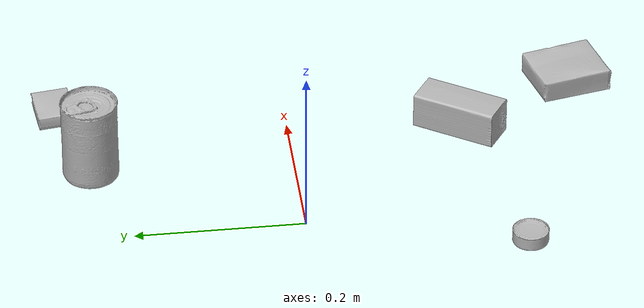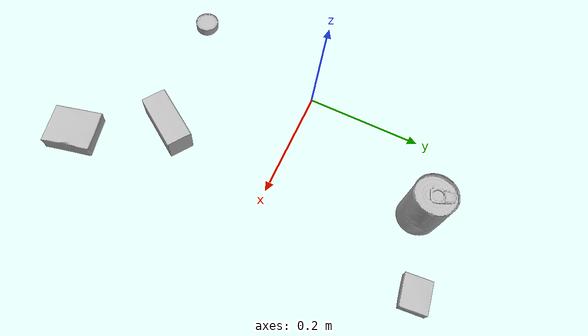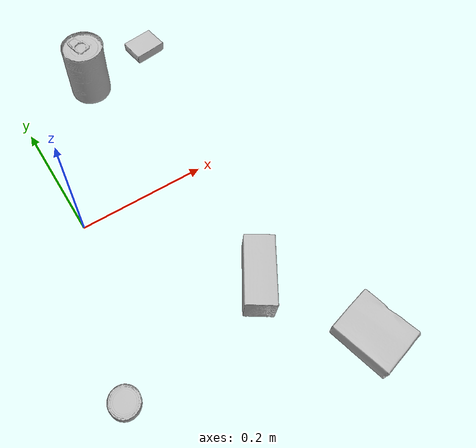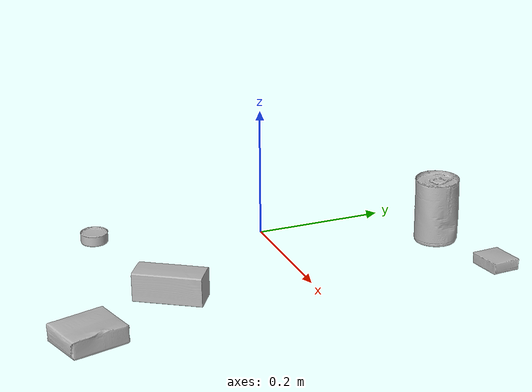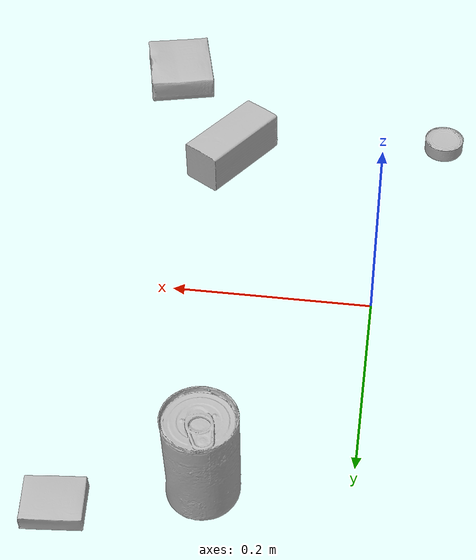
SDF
<sdf version="1.4">
  <world name="default">
    <light name="light1" type="point">
      <pose>0 0 1 0 0 0</pose>
      <diffuse>3 3 3 1</diffuse>
      <specular>3 3 3 1</specular>
    </light>
    <light name="light2" type="point">
      <pose>0 0.5 2 0 0 0</pose>
      <diffuse>1 1 1 1</diffuse>
      <specular>1 1 1 1</specular>
    </light>
    <light name="light3" type="point">
      <pose>0 0.5 2 0 0 0</pose>
      <diffuse>3 3 3 1</diffuse>
      <specular>3 3 3 1</specular>
    </light>
    <scene>
      <ambient>0.7 0.7 0.7</ambient>
    </scene>
    <model name="box1">
      <link name="link_box1">
        <collision name="default">
          <geometry>
            <mesh>
              <uri>model://pudding_box/collision_meshes/collision.obj</uri>
              <scale>0.5 0.5 0.5</scale>
            </mesh>
          </geometry>
          <surface>
            <friction>
              <ode>
                <mu>0.5</mu>
                <mu2>0.5</mu2>
              </ode>
            </friction>
          <contact>
        <ode>
            <max_vel>0</max_vel>
            <min_depth>0.0001</min_depth>
            <kp>1e8</kp>
        </ode>
    </contact></surface>
        </collision>
        <visual name="default">
          <geometry>
            <mesh>
              <uri>model://pudding_box/visual_meshes/visual.dae</uri>
              <scale>0.5 0.5 0.5</scale>
            </mesh>
          </geometry>
        </visual>
        <inertial>
          <mass>0.049221161752939224</mass>
          <pose>0.00024474109522998333 0.00040339428232982755 -0.0002594413817860186 0.005213101772454675 -0.006603800120423707 0.020079827019105066</pose>
          <inertia>
            <ixx>1.3910499e-05</ixx>
            <iyy>9.3590825e-06</iyy>
            <izz>2.0542482e-05</izz>
            <ixy>0</ixy>
            <ixz>0</ixz>
            <iyz>0</iyz>
          </inertia>
        </inertial>
      </link>
      <pose>0.25438162684440613 0.2751753330230713 0.009862907230854034 0.022348510913994306 -0.011391743353383336 -1.458398675430571</pose>
    </model>
    <model name="box2">
      <link name="link_box2">
        <collision name="default">
          <geometry>
            <mesh>
              <uri>model://gelatin_box/collision_meshes/collision.obj</uri>
              <scale>1.0 1.0 1.0</scale>
            </mesh>
          </geometry>
          <surface>
            <friction>
              <ode>
                <mu>0.5</mu>
                <mu2>0.5</mu2>
              </ode>
            </friction>
          <contact>
        <ode>
            <max_vel>0</max_vel>
            <min_depth>0.0001</min_depth>
            <kp>1e8</kp>
        </ode>
    </contact></surface>
        </collision>
        <visual name="default">
          <geometry>
            <mesh>
              <uri>model://gelatin_box/visual_meshes/visual.dae</uri>
              <scale>1.0 1.0 1.0</scale>
            </mesh>
          </geometry>
        </visual>
        <inertial>
          <mass>0.1975366622209549</mass>
          <pose>0.000431961816502735 0.00011156871187267825 -0.00036403207923285663 -0.0010503719683328595 -0.0047558182256164224 0.016440557608480007</pose>
          <inertia>
            <ixx>0.00013944478</ixx>
            <iyy>9.960467e-05</iyy>
            <izz>0.00021226601</izz>
            <ixy>0</ixy>
            <ixz>0</ixz>
            <iyz>0</iyz>
          </inertia>
        </inertial>
      </link>
      <pose>0.25236818194389343 -0.34799858927726746 0.015168314799666405 0.005597464944245792 -0.007304568055006338 0.23227574892242722</pose>
    </model>
    <model name="box3">
      <link name="link_box3">
        <collision name="default">
          <geometry>
            <mesh>
              <uri>model://wood_block/collision_meshes/collision.obj</uri>
              <scale>0.5 0.5 0.5</scale>
            </mesh>
          </geometry>
          <surface>
            <friction>
              <ode>
                <mu>0.5</mu>
                <mu2>0.5</mu2>
              </ode>
            </friction>
          <contact>
        <ode>
            <max_vel>0</max_vel>
            <min_depth>0.0001</min_depth>
            <kp>1e8</kp>
        </ode>
    </contact></surface>
        </collision>
        <visual name="default">
          <geometry>
            <mesh>
              <uri>model://wood_block/visual_meshes/visual.dae</uri>
              <scale>0.5 0.5 0.5</scale>
            </mesh>
          </geometry>
        </visual>
        <inertial>
          <mass>0.2799808979034424</mass>
          <pose>-2.9066577553749084e-06 -0.000285404734313488 0.00013204291462898254 -0.05220811074253327 -0.005192695744074178 -0.0068613776969266935</pose>
          <inertia>
            <ixx>9.3664195e-05</ixx>
            <iyy>0.0002958853</iyy>
            <izz>0.00029477844</izz>
            <ixy>0</ixy>
            <ixz>0</ixz>
            <iyz>0</iyz>
          </inertia>
        </inertial>
      </link>
      <pose>0.1692604124546051 -0.20484530925750732 0.022629255428910255 -0.0052084758475420745 0.005718699857140591 -2.1540705567227225</pose>
    </model>
    <model name="can1">
      <link name="link_can1">
        <collision name="default">
          <geometry>
            <mesh>
              <uri>model://tomato_soup_can/collision_meshes/collision.obj</uri>
              <scale>1.0 1.0 1.0</scale>
            </mesh>
          </geometry>
          <surface>
            <friction>
              <ode>
                <mu>0.5</mu>
                <mu2>0.5</mu2>
              </ode>
            </friction>
          <contact>
        <ode>
            <max_vel>0</max_vel>
            <min_depth>0.0001</min_depth>
            <kp>1e8</kp>
        </ode>
    </contact></surface>
        </collision>
        <visual name="default">
          <geometry>
            <mesh>
              <uri>model://tomato_soup_can/visual_meshes/visual.dae</uri>
              <scale>1.0 1.0 1.0</scale>
            </mesh>
          </geometry>
        </visual>
        <inertial>
          <mass>0.35683923959732056</mass>
          <pose>0.00012652271834667772 0.00010805513738887385 -0.0017973982030525804 0.007020067402313596 0.00042299257688944205 -0.009903281374499336</pose>
          <inertia>
            <ixx>0.0003912439</ixx>
            <iyy>0.00038898273</iyy>
            <izz>0.00020277809</izz>
            <ixy>0</ixy>
            <ixz>0</ixz>
            <iyz>0</iyz>
          </inertia>
        </inertial>
      </link>
      <pose>0.13034337759017944 0.23966149985790253 0.05127401649951935 -2.2275593368537666e-07 -3.711391047023509e-07 -3.1122929326752025</pose>
    </model>
    <model name="can2">
      <link name="link_can2">
        <collision name="default">
          <geometry>
            <mesh>
              <uri>model://tuna_fish_can/collision_meshes/collision.obj</uri>
              <scale>0.5 0.5 0.5</scale>
            </mesh>
          </geometry>
          <surface>
            <friction>
              <ode>
                <mu>0.5</mu>
                <mu2>0.5</mu2>
              </ode>
            </friction>
          <contact>
        <ode>
            <max_vel>0</max_vel>
            <min_depth>0.0001</min_depth>
            <kp>1e8</kp>
        </ode>
    </contact></surface>
        </collision>
        <visual name="default">
          <geometry>
            <mesh>
              <uri>model://tuna_fish_can/visual_meshes/visual.dae</uri>
              <scale>0.5 0.5 0.5</scale>
            </mesh>
          </geometry>
        </visual>
        <inertial>
          <mass>0.011508840136229992</mass>
          <pose>-2.0362092982395552e-05 -7.256176559167216e-06 -0.0005269026150926948 -0.0017944756095399476 0.0001716207335623094 0.24053890436657652</pose>
          <inertia>
            <ixx>1.5560124e-06</ixx>
            <iyy>1.5495272e-06</iyy>
            <izz>2.662559e-06</izz>
            <ixy>0</ixy>
            <ixz>0</ixz>
            <iyz>0</iyz>
          </inertia>
        </inertial>
      </link>
      <pose>-0.06444527208805084 -0.25184544920921326 0.008519998751580715 -6.159132708407137e-09 1.4011109993311782e-08 -0.9042878379587594</pose>
    </model>
  <physics type="ode">
      <max_contacts>50</max_contacts>
      <ode>
        <solver>
          <type>quick</type>
          <iters>75</iters>
        </solver>
        <constraints>
          <contact_max_correcting_vel>0</contact_max_correcting_vel>
          <contact_surface_layer>0</contact_surface_layer>
        </constraints>
      </ode>
    </physics></world>
</sdf>
